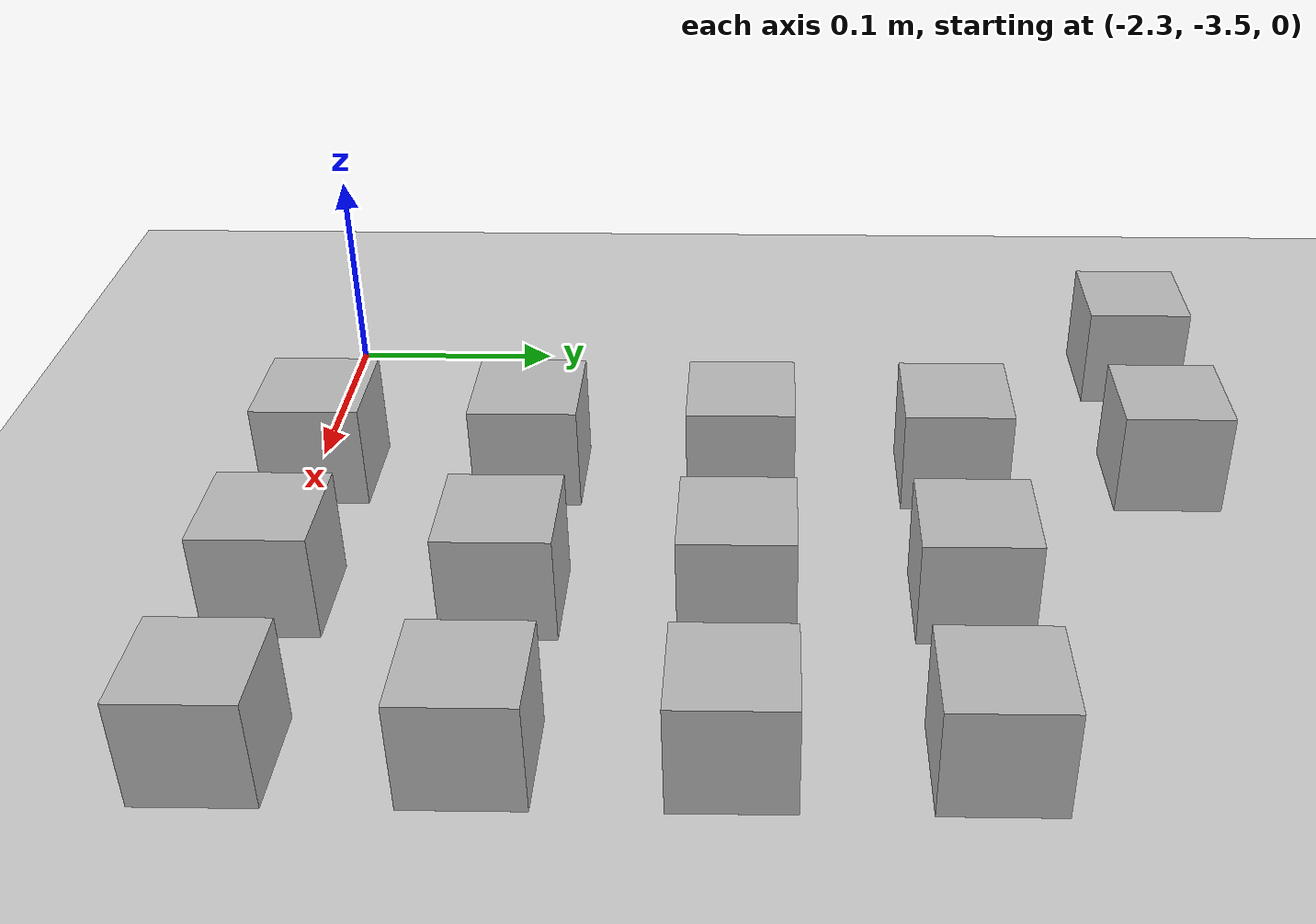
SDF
<sdf version="1.6">
 <world name="default">
  <model name="ground_plane">
   <static>1</static>
   <link name="link">
    <collision name="collision">
     <geometry><plane><normal>0 0 1</normal><size>100 100</size></plane></geometry>
     <surface><friction><ode><mu>100</mu><mu2>50</mu2></ode></friction></surface>
    </collision>
    <visual name="visual">
     <cast_shadows>0</cast_shadows>
     <geometry><plane><normal>0 0 1</normal><size>100 100</size></plane></geometry>
     <material>
      <script><uri>file://media/materials/scripts/gazebo.material</uri><name>Gazebo/Grey</name></script>
     </material>
    </visual>
   </link>
  </model>
  <model name="at451">
   <static>0</static>
   <link name="link">
    <inertial>
     <mass>0.01</mass>
     <inertia><ixx>4e-05</ixx><ixy>0</ixy><ixz>0</ixz><iyy>4e-05</iyy><iyz>0</iyz><izz>4e-05</izz></inertia>
    </inertial>
    <visual name="visual">
     <geometry><box><size>0.05 0.05 0.05</size></box></geometry>
     <material>
      <script>
       <uri>model://at0/materials/scripts</uri>
       <uri>model://at0/materials/textures</uri>
       <name>at0/Diffuse</name>
      </script>
     </material>
    </visual>
    <collision name="collision">
     <geometry><box><size>0.05 0.05 0.05</size></box></geometry>
     <surface><friction><ode><mu>0.8</mu><mu2>0.7</mu2></ode></friction></surface>
    </collision>
   </link>
   <pose>-2.18283 -3.49448 0.025 0 -0 0</pose>
  </model>
  <model name="at452">
   <static>0</static>
   <link name="link">
    <inertial>
     <mass>0.01</mass>
     <inertia><ixx>4e-05</ixx><ixy>0</ixy><ixz>0</ixz><iyy>4e-05</iyy><iyz>0</iyz><izz>4e-05</izz></inertia>
    </inertial>
    <visual name="visual">
     <geometry><box><size>0.05 0.05 0.05</size></box></geometry>
     <material>
      <script>
       <uri>model://at0/materials/scripts</uri>
       <uri>model://at0/materials/textures</uri>
       <name>at0/Diffuse</name>
      </script>
     </material>
    </visual>
    <collision name="collision">
     <geometry><box><size>0.05 0.05 0.05</size></box></geometry>
     <surface><friction><ode><mu>0.8</mu><mu2>0.7</mu2></ode></friction></surface>
    </collision>
   </link>
   <pose>-2.08283 -3.49448 0.025 0 -0 0</pose>
  </model>
  <model name="at453">
   <static>0</static>
   <link name="link">
    <inertial>
     <mass>0.01</mass>
     <inertia><ixx>4e-05</ixx><ixy>0</ixy><ixz>0</ixz><iyy>4e-05</iyy><iyz>0</iyz><izz>4e-05</izz></inertia>
    </inertial>
    <visual name="visual">
     <geometry><box><size>0.05 0.05 0.05</size></box></geometry>
     <material>
      <script>
       <uri>model://at0/materials/scripts</uri>
       <uri>model://at0/materials/textures</uri>
       <name>at0/Diffuse</name>
      </script>
     </material>
    </visual>
    <collision name="collision">
     <geometry><box><size>0.05 0.05 0.05</size></box></geometry>
     <surface><friction><ode><mu>0.8</mu><mu2>0.7</mu2></ode></friction></surface>
    </collision>
   </link>
   <pose>-1.98283 -3.49448 0.025 0 -0 0</pose>
  </model>
  <model name="at459">
   <static>0</static>
   <link name="link">
    <inertial>
     <mass>0.01</mass>
     <inertia><ixx>4e-05</ixx><ixy>0</ixy><ixz>0</ixz><iyy>4e-05</iyy><iyz>0</iyz><izz>4e-05</izz></inertia>
    </inertial>
    <visual name="visual">
     <geometry><box><size>0.05 0.05 0.05</size></box></geometry>
     <material>
      <script>
       <uri>model://at0/materials/scripts</uri>
       <uri>model://at0/materials/textures</uri>
       <name>at0/Diffuse</name>
      </script>
     </material>
    </visual>
    <collision name="collision">
     <geometry><box><size>0.05 0.05 0.05</size></box></geometry>
     <surface><friction><ode><mu>0.8</mu><mu2>0.7</mu2></ode></friction></surface>
    </collision>
   </link>
   <pose>-2.18283 -3.39448 0.025 0 -0 0</pose>
  </model>
  <model name="at460">
   <static>0</static>
   <link name="link">
    <inertial>
     <mass>0.01</mass>
     <inertia><ixx>4e-05</ixx><ixy>0</ixy><ixz>0</ixz><iyy>4e-05</iyy><iyz>0</iyz><izz>4e-05</izz></inertia>
    </inertial>
    <visual name="visual">
     <geometry><box><size>0.05 0.05 0.05</size></box></geometry>
     <material>
      <script>
       <uri>model://at0/materials/scripts</uri>
       <uri>model://at0/materials/textures</uri>
       <name>at0/Diffuse</name>
      </script>
     </material>
    </visual>
    <collision name="collision">
     <geometry><box><size>0.05 0.05 0.05</size></box></geometry>
     <surface><friction><ode><mu>0.8</mu><mu2>0.7</mu2></ode></friction></surface>
    </collision>
   </link>
   <pose>-2.08283 -3.39448 0.025 0 -0 0</pose>
  </model>
  <model name="at461">
   <static>0</static>
   <link name="link">
    <inertial>
     <mass>0.01</mass>
     <inertia><ixx>4e-05</ixx><ixy>0</ixy><ixz>0</ixz><iyy>4e-05</iyy><iyz>0</iyz><izz>4e-05</izz></inertia>
    </inertial>
    <visual name="visual">
     <geometry><box><size>0.05 0.05 0.05</size></box></geometry>
     <material>
      <script>
       <uri>model://at0/materials/scripts</uri>
       <uri>model://at0/materials/textures</uri>
       <name>at0/Diffuse</name>
      </script>
     </material>
    </visual>
    <collision name="collision">
     <geometry><box><size>0.05 0.05 0.05</size></box></geometry>
     <surface><friction><ode><mu>0.8</mu><mu2>0.7</mu2></ode></friction></surface>
    </collision>
   </link>
   <pose>-1.98283 -3.39448 0.025 0 -0 0</pose>
  </model>
  <model name="at467">
   <static>0</static>
   <link name="link">
    <inertial>
     <mass>0.01</mass>
     <inertia><ixx>4e-05</ixx><ixy>0</ixy><ixz>0</ixz><iyy>4e-05</iyy><iyz>0</iyz><izz>4e-05</izz></inertia>
    </inertial>
    <visual name="visual">
     <geometry><box><size>0.05 0.05 0.05</size></box></geometry>
     <material>
      <script>
       <uri>model://at0/materials/scripts</uri>
       <uri>model://at0/materials/textures</uri>
       <name>at0/Diffuse</name>
      </script>
     </material>
    </visual>
    <collision name="collision">
     <geometry><box><size>0.05 0.05 0.05</size></box></geometry>
     <surface><friction><ode><mu>0.8</mu><mu2>0.7</mu2></ode></friction></surface>
    </collision>
   </link>
   <pose>-2.18283 -3.29448 0.025 0 -0 0</pose>
  </model>
  <model name="at468">
   <static>0</static>
   <link name="link">
    <inertial>
     <mass>0.01</mass>
     <inertia><ixx>4e-05</ixx><ixy>0</ixy><ixz>0</ixz><iyy>4e-05</iyy><iyz>0</iyz><izz>4e-05</izz></inertia>
    </inertial>
    <visual name="visual">
     <geometry><box><size>0.05 0.05 0.05</size></box></geometry>
     <material>
      <script>
       <uri>model://at0/materials/scripts</uri>
       <uri>model://at0/materials/textures</uri>
       <name>at0/Diffuse</name>
      </script>
     </material>
    </visual>
    <collision name="collision">
     <geometry><box><size>0.05 0.05 0.05</size></box></geometry>
     <surface><friction><ode><mu>0.8</mu><mu2>0.7</mu2></ode></friction></surface>
    </collision>
   </link>
   <pose>-2.08283 -3.29448 0.025 0 -0 0</pose>
  </model>
  <model name="at469">
   <static>0</static>
   <link name="link">
    <inertial>
     <mass>0.01</mass>
     <inertia><ixx>4e-05</ixx><ixy>0</ixy><ixz>0</ixz><iyy>4e-05</iyy><iyz>0</iyz><izz>4e-05</izz></inertia>
    </inertial>
    <visual name="visual">
     <geometry><box><size>0.05 0.05 0.05</size></box></geometry>
     <material>
      <script>
       <uri>model://at0/materials/scripts</uri>
       <uri>model://at0/materials/textures</uri>
       <name>at0/Diffuse</name>
      </script>
     </material>
    </visual>
    <collision name="collision">
     <geometry><box><size>0.05 0.05 0.05</size></box></geometry>
     <surface><friction><ode><mu>0.8</mu><mu2>0.7</mu2></ode></friction></surface>
    </collision>
   </link>
   <pose>-1.98283 -3.29448 0.025 0 -0 0</pose>
  </model>
  <model name="at475">
   <static>0</static>
   <link name="link">
    <inertial>
     <mass>0.01</mass>
     <inertia><ixx>4e-05</ixx><ixy>0</ixy><ixz>0</ixz><iyy>4e-05</iyy><iyz>0</iyz><izz>4e-05</izz></inertia>
    </inertial>
    <visual name="visual">
     <geometry><box><size>0.05 0.05 0.05</size></box></geometry>
     <material>
      <script>
       <uri>model://at0/materials/scripts</uri>
       <uri>model://at0/materials/textures</uri>
       <name>at0/Diffuse</name>
      </script>
     </material>
    </visual>
    <collision name="collision">
     <geometry><box><size>0.05 0.05 0.05</size></box></geometry>
     <surface><friction><ode><mu>0.8</mu><mu2>0.7</mu2></ode></friction></surface>
    </collision>
   </link>
   <pose>-2.18283 -3.19448 0.025 0 -0 0</pose>
  </model>
  <model name="at476">
   <static>0</static>
   <link name="link">
    <inertial>
     <mass>0.01</mass>
     <inertia><ixx>4e-05</ixx><ixy>0</ixy><ixz>0</ixz><iyy>4e-05</iyy><iyz>0</iyz><izz>4e-05</izz></inertia>
    </inertial>
    <visual name="visual">
     <geometry><box><size>0.05 0.05 0.05</size></box></geometry>
     <material>
      <script>
       <uri>model://at0/materials/scripts</uri>
       <uri>model://at0/materials/textures</uri>
       <name>at0/Diffuse</name>
      </script>
     </material>
    </visual>
    <collision name="collision">
     <geometry><box><size>0.05 0.05 0.05</size></box></geometry>
     <surface><friction><ode><mu>0.8</mu><mu2>0.7</mu2></ode></friction></surface>
    </collision>
   </link>
   <pose>-2.08283 -3.19448 0.025 0 -0 0</pose>
  </model>
  <model name="at477">
   <static>0</static>
   <link name="link">
    <inertial>
     <mass>0.01</mass>
     <inertia><ixx>4e-05</ixx><ixy>0</ixy><ixz>0</ixz><iyy>4e-05</iyy><iyz>0</iyz><izz>4e-05</izz></inertia>
    </inertial>
    <visual name="visual">
     <geometry><box><size>0.05 0.05 0.05</size></box></geometry>
     <material>
      <script>
       <uri>model://at0/materials/scripts</uri>
       <uri>model://at0/materials/textures</uri>
       <name>at0/Diffuse</name>
      </script>
     </material>
    </visual>
    <collision name="collision">
     <geometry><box><size>0.05 0.05 0.05</size></box></geometry>
     <surface><friction><ode><mu>0.8</mu><mu2>0.7</mu2></ode></friction></surface>
    </collision>
   </link>
   <pose>-1.98283 -3.19448 0.025 0 -0 0</pose>
  </model>
  <model name="at482">
   <static>0</static>
   <link name="link">
    <inertial>
     <mass>0.01</mass>
     <inertia><ixx>4e-05</ixx><ixy>0</ixy><ixz>0</ixz><iyy>4e-05</iyy><iyz>0</iyz><izz>4e-05</izz></inertia>
    </inertial>
    <visual name="visual">
     <geometry><box><size>0.05 0.05 0.05</size></box></geometry>
     <material>
      <script>
       <uri>model://at0/materials/scripts</uri>
       <uri>model://at0/materials/textures</uri>
       <name>at0/Diffuse</name>
      </script>
     </material>
    </visual>
    <collision name="collision">
     <geometry><box><size>0.05 0.05 0.05</size></box></geometry>
     <surface><friction><ode><mu>0.8</mu><mu2>0.7</mu2></ode></friction></surface>
    </collision>
   </link>
   <pose>-2.28283 -3.09448 0.025 0 -0 0</pose>
  </model>
  <model name="at483">
   <static>0</static>
   <link name="link">
    <inertial>
     <mass>0.01</mass>
     <inertia><ixx>4e-05</ixx><ixy>0</ixy><ixz>0</ixz><iyy>4e-05</iyy><iyz>0</iyz><izz>4e-05</izz></inertia>
    </inertial>
    <visual name="visual">
     <geometry><box><size>0.05 0.05 0.05</size></box></geometry>
     <material>
      <script>
       <uri>model://at0/materials/scripts</uri>
       <uri>model://at0/materials/textures</uri>
       <name>at0/Diffuse</name>
      </script>
     </material>
    </visual>
    <collision name="collision">
     <geometry><box><size>0.05 0.05 0.05</size></box></geometry>
     <surface><friction><ode><mu>0.8</mu><mu2>0.7</mu2></ode></friction></surface>
    </collision>
   </link>
   <pose>-2.18283 -3.09448 0.025 0 -0 0</pose>
  </model>
 </world>
</sdf>
